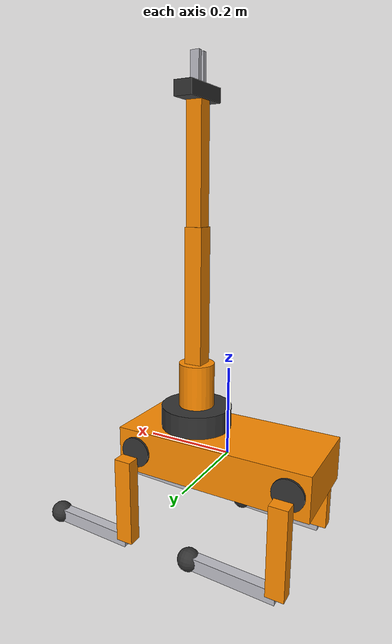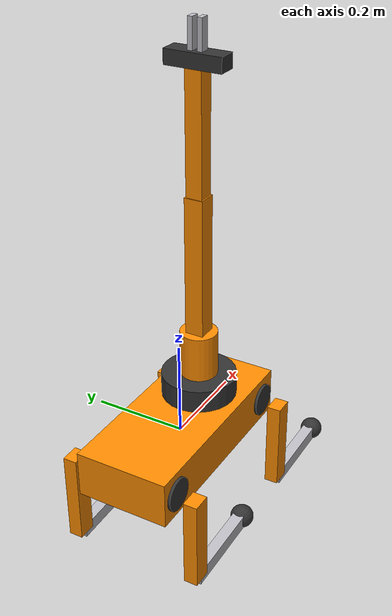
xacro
<?xml version="1.0"?>
<!-- Hybrid robot 2: a 4-legged robot carrying the 3-DOF arm (like a robot dog with an arm) -->
<robot name="legged_manipulator" xmlns:xacro="http://www.ros.org/wiki/xacro">
  <xacro:include filename="../../common/urdf/macros.xacro"/>
  <xacro:include filename="../../common/urdf/leg_macro.xacro"/>
  <xacro:include filename="../../common/urdf/arm3_macro.xacro"/>
  <link name="base_link">
    <visual><geometry><box size="0.45 0.20 0.10"/></geometry><material name="orange"/></visual>
    <collision><geometry><box size="0.45 0.20 0.10"/></geometry></collision>
    <xacro:box_inertia m="6.0" x="0.45" y="0.20" z="0.10"/>
  </link>
  <xacro:quad_leg prefix="front_left" parent="base_link" x="0.18" y_sign="1"/>
  <xacro:quad_leg prefix="front_right" parent="base_link" x="0.18" y_sign="-1"/>
  <xacro:quad_leg prefix="rear_left" parent="base_link" x="-0.18" y_sign="1"/>
  <xacro:quad_leg prefix="rear_right" parent="base_link" x="-0.18" y_sign="-1"/>
  <xacro:arm3 prefix="arm_" parent="base_link" xyz="0.08 0 0.05"/>
</robot>

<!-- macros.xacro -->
<!-- Shared materials and inertia macros (solid box, cylinder along Z, sphere) -->
<robot xmlns:xacro="http://www.ros.org/wiki/xacro">
  <material name="orange"><color rgba="1.0 0.55 0.0 1.0"/></material>
  <material name="dark_grey"><color rgba="0.2 0.2 0.2 1.0"/></material>
  <material name="light_grey"><color rgba="0.75 0.75 0.78 1.0"/></material>
  <material name="sky_blue"><color rgba="0.3 0.7 1.0 1.0"/></material>
  <material name="green"><color rgba="0.2 0.75 0.35 1.0"/></material>
  <material name="red"><color rgba="0.9 0.2 0.2 1.0"/></material>
  <material name="white"><color rgba="0.95 0.95 0.95 1.0"/></material>
  <material name="prop_blue"><color rgba="0.3 0.6 1.0 0.6"/></material>

  <xacro:macro name="box_inertia" params="m x y z xyz:='0 0 0' rpy:='0 0 0'">
    <inertial>
      <origin xyz="${xyz}" rpy="${rpy}"/>
      <mass value="${m}"/>
      <inertia ixx="${m*(y*y+z*z)/12}" ixy="0" ixz="0" iyy="${m*(x*x+z*z)/12}" iyz="0" izz="${m*(x*x+y*y)/12}"/>
    </inertial>
  </xacro:macro>
  <xacro:macro name="cylinder_inertia" params="m r h xyz:='0 0 0' rpy:='0 0 0'">
    <inertial>
      <origin xyz="${xyz}" rpy="${rpy}"/>
      <mass value="${m}"/>
      <inertia ixx="${m*(3*r*r+h*h)/12}" ixy="0" ixz="0" iyy="${m*(3*r*r+h*h)/12}" iyz="0" izz="${m*r*r/2}"/>
    </inertial>
  </xacro:macro>
  <xacro:macro name="sphere_inertia" params="m r xyz:='0 0 0'">
    <inertial>
      <origin xyz="${xyz}"/>
      <mass value="${m}"/>
      <inertia ixx="${2*m*r*r/5}" ixy="0" ixz="0" iyy="${2*m*r*r/5}" iyz="0" izz="${2*m*r*r/5}"/>
    </inertial>
  </xacro:macro>
</robot>

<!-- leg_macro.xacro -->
<!-- One leg of a 4-legged robot: hip (roll about X), thigh (pitch about Y), calf (pitch about Y), foot. -->
<robot xmlns:xacro="http://www.ros.org/wiki/xacro">
  <xacro:macro name="quad_leg" params="prefix parent x y_sign">
    <joint name="${prefix}_hip_joint" type="revolute">
      <parent link="${parent}"/><child link="${prefix}_hip_link"/>
      <origin xyz="${x} ${y_sign*0.08} 0"/><axis xyz="1 0 0"/><limit lower="-0.8" upper="0.8" effort="20" velocity="10"/>
    </joint>
    <link name="${prefix}_hip_link">
      <visual><origin rpy="${pi/2} 0 0"/><geometry><cylinder radius="0.035" length="0.05"/></geometry><material name="dark_grey"/></visual>
      <collision><origin rpy="${pi/2} 0 0"/><geometry><cylinder radius="0.035" length="0.05"/></geometry></collision>
      <xacro:cylinder_inertia m="0.5" r="0.035" h="0.05" rpy="${pi/2} 0 0"/>
    </link>
    <joint name="${prefix}_thigh_joint" type="revolute">
      <parent link="${prefix}_hip_link"/><child link="${prefix}_thigh_link"/>
      <origin xyz="0 ${y_sign*0.06} 0"/><axis xyz="0 1 0"/><limit lower="-1.0" upper="2.0" effort="20" velocity="10"/>
    </joint>
    <link name="${prefix}_thigh_link">
      <visual><origin xyz="0 0 -0.10"/><geometry><box size="0.04 0.03 0.20"/></geometry><material name="orange"/></visual>
      <collision><origin xyz="0 0 -0.10"/><geometry><box size="0.04 0.03 0.20"/></geometry></collision>
      <xacro:box_inertia m="0.6" x="0.04" y="0.03" z="0.20" xyz="0 0 -0.10"/>
    </link>
    <joint name="${prefix}_calf_joint" type="revolute">
      <parent link="${prefix}_thigh_link"/><child link="${prefix}_calf_link"/>
      <origin xyz="0 0 -0.20"/><axis xyz="0 1 0"/><limit lower="-2.6" upper="-0.6" effort="25" velocity="10"/>
    </joint>
    <link name="${prefix}_calf_link">
      <visual><origin xyz="0 0 -0.10"/><geometry><box size="0.03 0.025 0.20"/></geometry><material name="light_grey"/></visual>
      <collision><origin xyz="0 0 -0.10"/><geometry><box size="0.03 0.025 0.20"/></geometry></collision>
      <xacro:box_inertia m="0.2" x="0.03" y="0.025" z="0.20" xyz="0 0 -0.10"/>
    </link>
    <joint name="${prefix}_foot_joint" type="fixed">
      <parent link="${prefix}_calf_link"/><child link="${prefix}_foot_link"/><origin xyz="0 0 -0.20"/>
    </joint>
    <link name="${prefix}_foot_link">
      <visual><geometry><sphere radius="0.025"/></geometry><material name="dark_grey"/></visual>
      <collision><geometry><sphere radius="0.025"/></geometry></collision>
      <xacro:sphere_inertia m="0.05" r="0.025"/>
    </link>
  </xacro:macro>
</robot>

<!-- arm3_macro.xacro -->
<!-- A 3-DOF arm (yaw, shoulder, elbow) with a 2-finger gripper. The right finger MIMICS the left one. -->
<robot xmlns:xacro="http://www.ros.org/wiki/xacro">
  <xacro:macro name="arm3" params="prefix parent xyz:='0 0 0'">
    <joint name="${prefix}mount_joint" type="fixed">
      <parent link="${parent}"/><child link="${prefix}arm_base_link"/><origin xyz="${xyz}"/>
    </joint>
    <link name="${prefix}arm_base_link">
      <visual><origin xyz="0 0 0.025"/><geometry><cylinder radius="0.08" length="0.05"/></geometry><material name="dark_grey"/></visual>
      <collision><origin xyz="0 0 0.025"/><geometry><cylinder radius="0.08" length="0.05"/></geometry></collision>
      <xacro:cylinder_inertia m="1.0" r="0.08" h="0.05" xyz="0 0 0.025"/>
    </link>
    <joint name="${prefix}base_yaw_joint" type="revolute">
      <parent link="${prefix}arm_base_link"/><child link="${prefix}turret_link"/>
      <origin xyz="0 0 0.05"/><axis xyz="0 0 1"/><limit lower="-3.14" upper="3.14" effort="10" velocity="1.0"/>
    </joint>
    <link name="${prefix}turret_link">
      <visual><origin xyz="0 0 0.05"/><geometry><cylinder radius="0.04" length="0.10"/></geometry><material name="orange"/></visual>
      <collision><origin xyz="0 0 0.05"/><geometry><cylinder radius="0.04" length="0.10"/></geometry></collision>
      <xacro:cylinder_inertia m="0.3" r="0.04" h="0.10" xyz="0 0 0.05"/>
    </link>
    <joint name="${prefix}shoulder_joint" type="revolute">
      <parent link="${prefix}turret_link"/><child link="${prefix}upper_arm_link"/>
      <origin xyz="0 0 0.10"/><axis xyz="0 1 0"/><limit lower="-1.57" upper="1.57" effort="10" velocity="1.0"/>
    </joint>
    <link name="${prefix}upper_arm_link">
      <visual><origin xyz="0 0 0.15"/><geometry><box size="0.04 0.04 0.30"/></geometry><material name="orange"/></visual>
      <collision><origin xyz="0 0 0.15"/><geometry><box size="0.04 0.04 0.30"/></geometry></collision>
      <xacro:box_inertia m="0.4" x="0.04" y="0.04" z="0.30" xyz="0 0 0.15"/>
    </link>
    <joint name="${prefix}elbow_joint" type="revolute">
      <parent link="${prefix}upper_arm_link"/><child link="${prefix}forearm_link"/>
      <origin xyz="0 0 0.30"/><axis xyz="0 1 0"/><limit lower="-2.0" upper="2.0" effort="8" velocity="1.0"/>
    </joint>
    <link name="${prefix}forearm_link">
      <visual><origin xyz="0 0 0.125"/><geometry><box size="0.035 0.035 0.25"/></geometry><material name="orange"/></visual>
      <collision><origin xyz="0 0 0.125"/><geometry><box size="0.035 0.035 0.25"/></geometry></collision>
      <xacro:box_inertia m="0.3" x="0.035" y="0.035" z="0.25" xyz="0 0 0.125"/>
    </link>
    <joint name="${prefix}gripper_mount_joint" type="fixed">
      <parent link="${prefix}forearm_link"/><child link="${prefix}gripper_base_link"/><origin xyz="0 0 0.25"/>
    </joint>
    <link name="${prefix}gripper_base_link">
      <visual><origin xyz="0 0 0.015"/><geometry><box size="0.04 0.12 0.03"/></geometry><material name="dark_grey"/></visual>
      <collision><origin xyz="0 0 0.015"/><geometry><box size="0.04 0.12 0.03"/></geometry></collision>
      <xacro:box_inertia m="0.1" x="0.04" y="0.12" z="0.03" xyz="0 0 0.015"/>
    </link>
    <xacro:macro name="finger" params="side sign">
      <joint name="${prefix}${side}_finger_joint" type="prismatic">
        <parent link="${prefix}gripper_base_link"/><child link="${prefix}${side}_finger_link"/>
        <origin xyz="0 ${sign*0.01} 0.03"/><axis xyz="0 ${sign} 0"/><limit lower="0" upper="0.04" effort="5" velocity="0.05"/>
        <xacro:if value="${sign &lt; 0}"><mimic joint="${prefix}left_finger_joint" multiplier="1" offset="0"/></xacro:if>
      </joint>
      <link name="${prefix}${side}_finger_link">
        <visual><origin xyz="0 0 0.03"/><geometry><box size="0.02 0.01 0.06"/></geometry><material name="light_grey"/></visual>
        <collision><origin xyz="0 0 0.03"/><geometry><box size="0.02 0.01 0.06"/></geometry></collision>
        <xacro:box_inertia m="0.02" x="0.02" y="0.01" z="0.06" xyz="0 0 0.03"/>
      </link>
    </xacro:macro>
    <xacro:finger side="left" sign="1"/>
    <xacro:finger side="right" sign="-1"/>
  </xacro:macro>
</robot>
